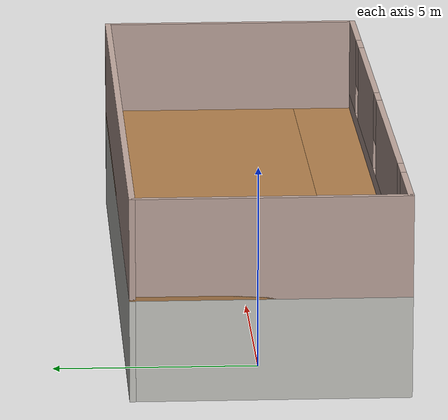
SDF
<?xml version='1.0'?>
<sdf version='1.4'>
  <model name='building1'>
    <pose>6.085 -0.15 0 0 -0 0</pose>
    <link name='Floor_0'>
      <pose>-0 0 2.5 0 -0 0</pose>
      <visual name='Floor_0_Visual_0'>
        <pose>-7.97619 0 0.05 0 -0 0</pose>
        <geometry>
          <box>
            <size>1.54762 6.75 0.1</size>
          </box>
        </geometry>
        <material>
          <script>
            <uri>file://media/materials/scripts/gazebo.material</uri>
            <name>Gazebo/Wood</name>
          </script>
          <ambient>1 1 1 1</ambient>
        </material>
      </visual>
      <collision name='Floor_0_Collision_0'>
        <geometry>
          <box>
            <size>1.54762 6.75 0.1</size>
          </box>
        </geometry>
        <pose>-7.97619 0 0.05 0 -0 0</pose>
      </collision>
      <visual name='Floor_0_Visual_1'>
        <pose>0.77381 -2.54152 0.05 0 -0 0</pose>
        <geometry>
          <box>
            <size>15.9524 1.66697 0.1</size>
          </box>
        </geometry>
        <material>
          <script>
            <uri>file://media/materials/scripts/gazebo.material</uri>
            <name>Gazebo/Wood</name>
          </script>
          <ambient>1 1 1 1</ambient>
        </material>
      </visual>
      <collision name='Floor_0_Collision_1'>
        <geometry>
          <box>
            <size>15.9524 1.66697 0.1</size>
          </box>
        </geometry>
        <pose>0.77381 -2.54152 0.05 0 -0 0</pose>
      </collision>
      <visual name='Floor_0_Visual_2'>
        <pose>1.27381 0.833484 0.05 0 -0 0</pose>
        <geometry>
          <box>
            <size>14.9524 5.08303 0.1</size>
          </box>
        </geometry>
        <material>
          <script>
            <uri>file://media/materials/scripts/gazebo.material</uri>
            <name>Gazebo/Wood</name>
          </script>
          <ambient>1 1 1 1</ambient>
        </material>
      </visual>
      <collision name='Floor_0_Collision_2'>
        <geometry>
          <box>
            <size>14.9524 5.08303 0.1</size>
          </box>
        </geometry>
        <pose>1.27381 0.833484 0.05 0 -0 0</pose>
      </collision>
      <visual name='Floor_0_Visual_3'>
        <pose>-6.70238 2.58348 0.05 0 -0 0</pose>
        <geometry>
          <box>
            <size>1 1.58303 0.1</size>
          </box>
        </geometry>
        <material>
          <script>
            <uri>file://media/materials/scripts/gazebo.material</uri>
            <name>Gazebo/Wood</name>
          </script>
          <ambient>1 1 1 1</ambient>
        </material>
      </visual>
      <collision name='Floor_0_Collision_3'>
        <geometry>
          <box>
            <size>1 1.58303 0.1</size>
          </box>
        </geometry>
        <pose>-6.70238 2.58348 0.05 0 -0 0</pose>
      </collision>
    </link>
    <link name='Stairs_0'>
      <visual name='Stairs_0_Visual_0'>
        <pose>-6.70238 1.6753 0.083333 0 -0 0</pose>
        <geometry>
          <box>
            <size>1 0.233333 0.166667</size>
          </box>
        </geometry>
        <material>
          <script>
            <uri>file://media/materials/scripts/gazebo.material</uri>
            <name>Gazebo/CeilingTiled</name>
          </script>
          <ambient>1 1 1 1</ambient>
        </material>
      </visual>
      <collision name='Stairs_0_Collision_0'>
        <geometry>
          <box>
            <size>1 0.233333 0.166667</size>
          </box>
        </geometry>
        <pose>-6.70238 1.6753 0.083333 0 -0 0</pose>
      </collision>
      <visual name='Stairs_0_Visual_1'>
        <pose>-6.70238 1.44197 0.25 0 -0 0</pose>
        <geometry>
          <box>
            <size>1 0.233335 0.166668</size>
          </box>
        </geometry>
        <material>
          <script>
            <uri>file://media/materials/scripts/gazebo.material</uri>
            <name>Gazebo/CeilingTiled</name>
          </script>
          <ambient>1 1 1 1</ambient>
        </material>
      </visual>
      <collision name='Stairs_0_Collision_1'>
        <geometry>
          <box>
            <size>1 0.233335 0.166668</size>
          </box>
        </geometry>
        <pose>-6.70238 1.44197 0.25 0 -0 0</pose>
      </collision>
      <visual name='Stairs_0_Visual_2'>
        <pose>-6.70238 1.20863 0.416667 0 -0 0</pose>
        <geometry>
          <box>
            <size>1 0.233335 0.166668</size>
          </box>
        </geometry>
        <material>
          <script>
            <uri>file://media/materials/scripts/gazebo.material</uri>
            <name>Gazebo/CeilingTiled</name>
          </script>
          <ambient>1 1 1 1</ambient>
        </material>
      </visual>
      <collision name='Stairs_0_Collision_2'>
        <geometry>
          <box>
            <size>1 0.233335 0.166668</size>
          </box>
        </geometry>
        <pose>-6.70238 1.20863 0.416667 0 -0 0</pose>
      </collision>
      <visual name='Stairs_0_Visual_3'>
        <pose>-6.70238 0.975302 0.583333 0 -0 0</pose>
        <geometry>
          <box>
            <size>1 0.233335 0.166668</size>
          </box>
        </geometry>
        <material>
          <script>
            <uri>file://media/materials/scripts/gazebo.material</uri>
            <name>Gazebo/CeilingTiled</name>
          </script>
          <ambient>1 1 1 1</ambient>
        </material>
      </visual>
      <collision name='Stairs_0_Collision_3'>
        <geometry>
          <box>
            <size>1 0.233335 0.166668</size>
          </box>
        </geometry>
        <pose>-6.70238 0.975302 0.583333 0 -0 0</pose>
      </collision>
      <visual name='Stairs_0_Visual_4'>
        <pose>-6.70238 0.741969 0.75 0 -0 0</pose>
        <geometry>
          <box>
            <size>1 0.233335 0.166668</size>
          </box>
        </geometry>
        <material>
          <script>
            <uri>file://media/materials/scripts/gazebo.material</uri>
            <name>Gazebo/CeilingTiled</name>
          </script>
          <ambient>1 1 1 1</ambient>
        </material>
      </visual>
      <collision name='Stairs_0_Collision_4'>
        <geometry>
          <box>
            <size>1 0.233335 0.166668</size>
          </box>
        </geometry>
        <pose>-6.70238 0.741969 0.75 0 -0 0</pose>
      </collision>
      <visual name='Stairs_0_Visual_5'>
        <pose>-6.70238 0.508635 0.916667 0 -0 0</pose>
        <geometry>
          <box>
            <size>1 0.233335 0.166668</size>
          </box>
        </geometry>
        <material>
          <script>
            <uri>file://media/materials/scripts/gazebo.material</uri>
            <name>Gazebo/CeilingTiled</name>
          </script>
          <ambient>1 1 1 1</ambient>
        </material>
      </visual>
      <collision name='Stairs_0_Collision_5'>
        <geometry>
          <box>
            <size>1 0.233335 0.166668</size>
          </box>
        </geometry>
        <pose>-6.70238 0.508635 0.916667 0 -0 0</pose>
      </collision>
      <visual name='Stairs_0_Visual_6'>
        <pose>-6.70238 0.275302 1.08333 0 -0 0</pose>
        <geometry>
          <box>
            <size>1 0.233335 0.166668</size>
          </box>
        </geometry>
        <material>
          <script>
            <uri>file://media/materials/scripts/gazebo.material</uri>
            <name>Gazebo/CeilingTiled</name>
          </script>
          <ambient>1 1 1 1</ambient>
        </material>
      </visual>
      <collision name='Stairs_0_Collision_6'>
        <geometry>
          <box>
            <size>1 0.233335 0.166668</size>
          </box>
        </geometry>
        <pose>-6.70238 0.275302 1.08333 0 -0 0</pose>
      </collision>
      <visual name='Stairs_0_Visual_7'>
        <pose>-6.70238 0.041969 1.25 0 -0 0</pose>
        <geometry>
          <box>
            <size>1 0.233335 0.166668</size>
          </box>
        </geometry>
        <material>
          <script>
            <uri>file://media/materials/scripts/gazebo.material</uri>
            <name>Gazebo/CeilingTiled</name>
          </script>
          <ambient>1 1 1 1</ambient>
        </material>
      </visual>
      <collision name='Stairs_0_Collision_7'>
        <geometry>
          <box>
            <size>1 0.233335 0.166668</size>
          </box>
        </geometry>
        <pose>-6.70238 0.041969 1.25 0 -0 0</pose>
      </collision>
      <visual name='Stairs_0_Visual_8'>
        <pose>-6.70238 -0.191365 1.41667 0 -0 0</pose>
        <geometry>
          <box>
            <size>1 0.233335 0.166668</size>
          </box>
        </geometry>
        <material>
          <script>
            <uri>file://media/materials/scripts/gazebo.material</uri>
            <name>Gazebo/CeilingTiled</name>
          </script>
          <ambient>1 1 1 1</ambient>
        </material>
      </visual>
      <collision name='Stairs_0_Collision_8'>
        <geometry>
          <box>
            <size>1 0.233335 0.166668</size>
          </box>
        </geometry>
        <pose>-6.70238 -0.191365 1.41667 0 -0 0</pose>
      </collision>
      <visual name='Stairs_0_Visual_9'>
        <pose>-6.70238 -0.424698 1.58333 0 -0 0</pose>
        <geometry>
          <box>
            <size>1 0.233335 0.166668</size>
          </box>
        </geometry>
        <material>
          <script>
            <uri>file://media/materials/scripts/gazebo.material</uri>
            <name>Gazebo/CeilingTiled</name>
          </script>
          <ambient>1 1 1 1</ambient>
        </material>
      </visual>
      <collision name='Stairs_0_Collision_9'>
        <geometry>
          <box>
            <size>1 0.233335 0.166668</size>
          </box>
        </geometry>
        <pose>-6.70238 -0.424698 1.58333 0 -0 0</pose>
      </collision>
      <visual name='Stairs_0_Visual_10'>
        <pose>-6.70238 -0.658031 1.75 0 -0 0</pose>
        <geometry>
          <box>
            <size>1 0.233335 0.166668</size>
          </box>
        </geometry>
        <material>
          <script>
            <uri>file://media/materials/scripts/gazebo.material</uri>
            <name>Gazebo/CeilingTiled</name>
          </script>
          <ambient>1 1 1 1</ambient>
        </material>
      </visual>
      <collision name='Stairs_0_Collision_10'>
        <geometry>
          <box>
            <size>1 0.233335 0.166668</size>
          </box>
        </geometry>
        <pose>-6.70238 -0.658031 1.75 0 -0 0</pose>
      </collision>
      <visual name='Stairs_0_Visual_11'>
        <pose>-6.70238 -0.891365 1.91667 0 -0 0</pose>
        <geometry>
          <box>
            <size>1 0.233335 0.166668</size>
          </box>
        </geometry>
        <material>
          <script>
            <uri>file://media/materials/scripts/gazebo.material</uri>
            <name>Gazebo/CeilingTiled</name>
          </script>
          <ambient>1 1 1 1</ambient>
        </material>
      </visual>
      <collision name='Stairs_0_Collision_11'>
        <geometry>
          <box>
            <size>1 0.233335 0.166668</size>
          </box>
        </geometry>
        <pose>-6.70238 -0.891365 1.91667 0 -0 0</pose>
      </collision>
      <visual name='Stairs_0_Visual_12'>
        <pose>-6.70238 -1.1247 2.08333 0 -0 0</pose>
        <geometry>
          <box>
            <size>1 0.233335 0.166668</size>
          </box>
        </geometry>
        <material>
          <script>
            <uri>file://media/materials/scripts/gazebo.material</uri>
            <name>Gazebo/CeilingTiled</name>
          </script>
          <ambient>1 1 1 1</ambient>
        </material>
      </visual>
      <collision name='Stairs_0_Collision_12'>
        <geometry>
          <box>
            <size>1 0.233335 0.166668</size>
          </box>
        </geometry>
        <pose>-6.70238 -1.1247 2.08333 0 -0 0</pose>
      </collision>
      <visual name='Stairs_0_Visual_13'>
        <pose>-6.70238 -1.35803 2.25 0 -0 0</pose>
        <geometry>
          <box>
            <size>1 0.233335 0.166668</size>
          </box>
        </geometry>
        <material>
          <script>
            <uri>file://media/materials/scripts/gazebo.material</uri>
            <name>Gazebo/CeilingTiled</name>
          </script>
          <ambient>1 1 1 1</ambient>
        </material>
      </visual>
      <collision name='Stairs_0_Collision_13'>
        <geometry>
          <box>
            <size>1 0.233335 0.166668</size>
          </box>
        </geometry>
        <pose>-6.70238 -1.35803 2.25 0 -0 0</pose>
      </collision>
      <visual name='Stairs_0_Visual_14'>
        <pose>-6.70238 -1.59136 2.41667 0 -0 0</pose>
        <geometry>
          <box>
            <size>1 0.233335 0.166668</size>
          </box>
        </geometry>
        <material>
          <script>
            <uri>file://media/materials/scripts/gazebo.material</uri>
            <name>Gazebo/CeilingTiled</name>
          </script>
          <ambient>1 1 1 1</ambient>
        </material>
      </visual>
      <collision name='Stairs_0_Collision_14'>
        <geometry>
          <box>
            <size>1 0.233335 0.166668</size>
          </box>
        </geometry>
        <pose>-6.70238 -1.59136 2.41667 0 -0 0</pose>
      </collision>
    </link>
    <link name='Wall_0'>
      <pose>-0 -3.3 0 0 -0 0</pose>
      <visual name='Wall_0_Visual_0'>
        <pose>-6.25056 0 1.25 0 -0 0</pose>
        <geometry>
          <box>
            <size>4.99888 0.15 2.5</size>
          </box>
        </geometry>
        <material>
          <script>
            <uri>file://media/materials/scripts/gazebo.material</uri>
            <name>Gazebo/CeilingTiled</name>
          </script>
          <ambient>1 1 1 1</ambient>
        </material>
      </visual>
      <collision name='Wall_0_Collision_0'>
        <geometry>
          <box>
            <size>4.99888 0.15 2.5</size>
          </box>
        </geometry>
        <pose>-6.25056 0 1.25 0 -0 0</pose>
      </collision>
      <visual name='Wall_0_Visual_1'>
        <pose>0.460751 0 1.25 0 -0 0</pose>
        <geometry>
          <box>
            <size>6.62374 0.15 2.5</size>
          </box>
        </geometry>
        <material>
          <script>
            <uri>file://media/materials/scripts/gazebo.material</uri>
            <name>Gazebo/CeilingTiled</name>
          </script>
          <ambient>1 1 1 1</ambient>
        </material>
      </visual>
      <collision name='Wall_0_Collision_1'>
        <geometry>
          <box>
            <size>6.62374 0.15 2.5</size>
          </box>
        </geometry>
        <pose>0.460751 0 1.25 0 -0 0</pose>
      </collision>
      <visual name='Wall_0_Visual_2'>
        <pose>6.71131 0 1.25 0 -0 0</pose>
        <geometry>
          <box>
            <size>4.07738 0.15 2.5</size>
          </box>
        </geometry>
        <material>
          <script>
            <uri>file://media/materials/scripts/gazebo.material</uri>
            <name>Gazebo/CeilingTiled</name>
          </script>
          <ambient>1 1 1 1</ambient>
        </material>
      </visual>
      <collision name='Wall_0_Collision_2'>
        <geometry>
          <box>
            <size>4.07738 0.15 2.5</size>
          </box>
        </geometry>
        <pose>6.71131 0 1.25 0 -0 0</pose>
      </collision>
      <visual name='Wall_0_Visual_3'>
        <pose>-3.30112 0 2.25 0 -0 0</pose>
        <geometry>
          <box>
            <size>0.9 0.15 0.5</size>
          </box>
        </geometry>
        <material>
          <script>
            <uri>file://media/materials/scripts/gazebo.material</uri>
            <name>Gazebo/CeilingTiled</name>
          </script>
          <ambient>1 1 1 1</ambient>
        </material>
      </visual>
      <collision name='Wall_0_Collision_3'>
        <geometry>
          <box>
            <size>0.9 0.15 0.5</size>
          </box>
        </geometry>
        <pose>-3.30112 0 2.25 0 -0 0</pose>
      </collision>
      <visual name='Wall_0_Visual_4'>
        <pose>4.22262 0 2.25 0 -0 0</pose>
        <geometry>
          <box>
            <size>0.9 0.15 0.5</size>
          </box>
        </geometry>
        <material>
          <script>
            <uri>file://media/materials/scripts/gazebo.material</uri>
            <name>Gazebo/CeilingTiled</name>
          </script>
          <ambient>1 1 1 1</ambient>
        </material>
      </visual>
      <collision name='Wall_0_Collision_4'>
        <geometry>
          <box>
            <size>0.9 0.15 0.5</size>
          </box>
        </geometry>
        <pose>4.22262 0 2.25 0 -0 0</pose>
      </collision>
    </link>
    <link name='Wall_1'>
      <collision name='Wall_1_Collision'>
        <geometry>
          <box>
            <size>6.75 0.15 2.5</size>
          </box>
        </geometry>
        <pose>0 0 1.25 0 -0 0</pose>
      </collision>
      <visual name='Wall_1_Visual'>
        <pose>0 0 1.25 0 -0 0</pose>
        <geometry>
          <box>
            <size>6.75 0.15 2.5</size>
          </box>
        </geometry>
        <material>
          <script>
            <uri>file://media/materials/scripts/gazebo.material</uri>
            <name>Gazebo/CeilingTiled</name>
          </script>
          <ambient>1 1 1 1</ambient>
        </material>
      </visual>
      <pose>8.675 0 0 0 -0 1.5708</pose>
    </link>
    <link name='Wall_2'>
      <collision name='Wall_2_Collision'>
        <geometry>
          <box>
            <size>17.5 0.15 2.5</size>
          </box>
        </geometry>
        <pose>0 0 1.25 0 -0 0</pose>
      </collision>
      <visual name='Wall_2_Visual'>
        <pose>0 0 1.25 0 -0 0</pose>
        <geometry>
          <box>
            <size>17.5 0.15 2.5</size>
          </box>
        </geometry>
        <material>
          <script>
            <uri>file://media/materials/scripts/gazebo.material</uri>
            <name>Gazebo/CeilingTiled</name>
          </script>
          <ambient>1 1 1 1</ambient>
        </material>
      </visual>
      <pose>-0 3.3 0 0 -0 3.14159</pose>
    </link>
    <link name='Wall_3'>
      <collision name='Wall_3_Collision'>
        <geometry>
          <box>
            <size>6.75 0.15 2.5</size>
          </box>
        </geometry>
        <pose>0 0 1.25 0 -0 0</pose>
      </collision>
      <visual name='Wall_3_Visual'>
        <pose>0 0 1.25 0 -0 0</pose>
        <geometry>
          <box>
            <size>6.75 0.15 2.5</size>
          </box>
        </geometry>
        <material>
          <script>
            <uri>file://media/materials/scripts/gazebo.material</uri>
            <name>Gazebo/CeilingTiled</name>
          </script>
          <ambient>1 1 1 1</ambient>
        </material>
      </visual>
      <pose>-8.675 0 0 0 0 -1.5708</pose>
    </link>
    <link name='Wall_5'>
      <pose>-0 -3.3 2.5 0 -0 0</pose>
      <visual name='Wall_5_Visual_0'>
        <pose>-7.69619 0 1.25 0 -0 0</pose>
        <geometry>
          <box>
            <size>2.10762 0.15 2.5</size>
          </box>
        </geometry>
        <material>
          <script>
            <uri>file://media/materials/scripts/gazebo.material</uri>
            <name>Gazebo/Grey</name>
          </script>
          <ambient>0.760784 0.662745 0.627451 1</ambient>
        </material>
      </visual>
      <collision name='Wall_5_Collision_0'>
        <geometry>
          <box>
            <size>2.10762 0.15 2.5</size>
          </box>
        </geometry>
        <pose>-7.69619 0 1.25 0 -0 0</pose>
      </collision>
      <visual name='Wall_5_Visual_1'>
        <pose>1.05381 0 0.25 0 -0 0</pose>
        <geometry>
          <box>
            <size>15.3924 0.15 0.5</size>
          </box>
        </geometry>
        <material>
          <script>
            <uri>file://media/materials/scripts/gazebo.material</uri>
            <name>Gazebo/Grey</name>
          </script>
          <ambient>0.760784 0.662745 0.627451 1</ambient>
        </material>
      </visual>
      <collision name='Wall_5_Collision_1'>
        <geometry>
          <box>
            <size>15.3924 0.15 0.5</size>
          </box>
        </geometry>
        <pose>1.05381 0 0.25 0 -0 0</pose>
      </collision>
      <visual name='Wall_5_Visual_2'>
        <pose>-2.82688 0 1.5 0 -0 0</pose>
        <geometry>
          <box>
            <size>6.031 0.15 2</size>
          </box>
        </geometry>
        <material>
          <script>
            <uri>file://media/materials/scripts/gazebo.material</uri>
            <name>Gazebo/Grey</name>
          </script>
          <ambient>0.760784 0.662745 0.627451 1</ambient>
        </material>
      </visual>
      <collision name='Wall_5_Collision_2'>
        <geometry>
          <box>
            <size>6.031 0.15 2</size>
          </box>
        </geometry>
        <pose>-2.82688 0 1.5 0 -0 0</pose>
      </collision>
      <visual name='Wall_5_Visual_3'>
        <pose>3.36012 0 1.5 0 -0 0</pose>
        <geometry>
          <box>
            <size>4.743 0.15 2</size>
          </box>
        </geometry>
        <material>
          <script>
            <uri>file://media/materials/scripts/gazebo.material</uri>
            <name>Gazebo/Grey</name>
          </script>
          <ambient>0.760784 0.662745 0.627451 1</ambient>
        </material>
      </visual>
      <collision name='Wall_5_Collision_3'>
        <geometry>
          <box>
            <size>4.743 0.15 2</size>
          </box>
        </geometry>
        <pose>3.36012 0 1.5 0 -0 0</pose>
      </collision>
      <visual name='Wall_5_Visual_4'>
        <pose>7.64081 0 1.5 0 -0 0</pose>
        <geometry>
          <box>
            <size>2.21838 0.15 2</size>
          </box>
        </geometry>
        <material>
          <script>
            <uri>file://media/materials/scripts/gazebo.material</uri>
            <name>Gazebo/Grey</name>
          </script>
          <ambient>0.760784 0.662745 0.627451 1</ambient>
        </material>
      </visual>
      <collision name='Wall_5_Collision_4'>
        <geometry>
          <box>
            <size>2.21838 0.15 2</size>
          </box>
        </geometry>
        <pose>7.64081 0 1.5 0 -0 0</pose>
      </collision>
      <visual name='Wall_5_Visual_5'>
        <pose>-6.24238 0 1.9 0 -0 0</pose>
        <geometry>
          <box>
            <size>0.8 0.15 1.2</size>
          </box>
        </geometry>
        <material>
          <script>
            <uri>file://media/materials/scripts/gazebo.material</uri>
            <name>Gazebo/Grey</name>
          </script>
          <ambient>0.760784 0.662745 0.627451 1</ambient>
        </material>
      </visual>
      <collision name='Wall_5_Collision_5'>
        <geometry>
          <box>
            <size>0.8 0.15 1.2</size>
          </box>
        </geometry>
        <pose>-6.24238 0 1.9 0 -0 0</pose>
      </collision>
      <visual name='Wall_5_Visual_6'>
        <pose>0.588621 0 1.9 0 -0 0</pose>
        <geometry>
          <box>
            <size>0.8 0.15 1.2</size>
          </box>
        </geometry>
        <material>
          <script>
            <uri>file://media/materials/scripts/gazebo.material</uri>
            <name>Gazebo/Grey</name>
          </script>
          <ambient>0.760784 0.662745 0.627451 1</ambient>
        </material>
      </visual>
      <collision name='Wall_5_Collision_6'>
        <geometry>
          <box>
            <size>0.8 0.15 1.2</size>
          </box>
        </geometry>
        <pose>0.588621 0 1.9 0 -0 0</pose>
      </collision>
      <visual name='Wall_5_Visual_7'>
        <pose>6.13162 0 1.9 0 -0 0</pose>
        <geometry>
          <box>
            <size>0.8 0.15 1.2</size>
          </box>
        </geometry>
        <material>
          <script>
            <uri>file://media/materials/scripts/gazebo.material</uri>
            <name>Gazebo/Grey</name>
          </script>
          <ambient>0.760784 0.662745 0.627451 1</ambient>
        </material>
      </visual>
      <collision name='Wall_5_Collision_7'>
        <geometry>
          <box>
            <size>0.8 0.15 1.2</size>
          </box>
        </geometry>
        <pose>6.13162 0 1.9 0 -0 0</pose>
      </collision>
    </link>
    <link name='Wall_6'>
      <collision name='Wall_6_Collision'>
        <geometry>
          <box>
            <size>6.75 0.15 2.5</size>
          </box>
        </geometry>
        <pose>0 0 1.25 0 -0 0</pose>
      </collision>
      <visual name='Wall_6_Visual'>
        <pose>0 0 1.25 0 -0 0</pose>
        <geometry>
          <box>
            <size>6.75 0.15 2.5</size>
          </box>
        </geometry>
        <material>
          <script>
            <uri>file://media/materials/scripts/gazebo.material</uri>
            <name>Gazebo/Grey</name>
          </script>
          <ambient>0.760784 0.662745 0.627451 1</ambient>
        </material>
      </visual>
      <pose>8.675 0 2.5 0 -0 1.5708</pose>
    </link>
    <link name='Wall_7'>
      <collision name='Wall_7_Collision'>
        <geometry>
          <box>
            <size>17.5 0.15 2.5</size>
          </box>
        </geometry>
        <pose>0 0 1.25 0 -0 0</pose>
      </collision>
      <visual name='Wall_7_Visual'>
        <pose>0 0 1.25 0 -0 0</pose>
        <geometry>
          <box>
            <size>17.5 0.15 2.5</size>
          </box>
        </geometry>
        <material>
          <script>
            <uri>file://media/materials/scripts/gazebo.material</uri>
            <name>Gazebo/Grey</name>
          </script>
          <ambient>0.760784 0.662745 0.627451 1</ambient>
        </material>
      </visual>
      <pose>-0 3.3 2.5 0 -0 3.14159</pose>
    </link>
    <link name='Wall_8'>
      <collision name='Wall_8_Collision'>
        <geometry>
          <box>
            <size>6.75 0.15 2.5</size>
          </box>
        </geometry>
        <pose>0 0 1.25 0 -0 0</pose>
      </collision>
      <visual name='Wall_8_Visual'>
        <pose>0 0 1.25 0 -0 0</pose>
        <geometry>
          <box>
            <size>6.75 0.15 2.5</size>
          </box>
        </geometry>
        <material>
          <script>
            <uri>file://media/materials/scripts/gazebo.material</uri>
            <name>Gazebo/Grey</name>
          </script>
          <ambient>0.760784 0.662745 0.627451 1</ambient>
        </material>
      </visual>
      <pose>-8.675 0 2.5 0 0 -1.5708</pose>
    </link>
    <static>1</static>
  </model>
</sdf>
